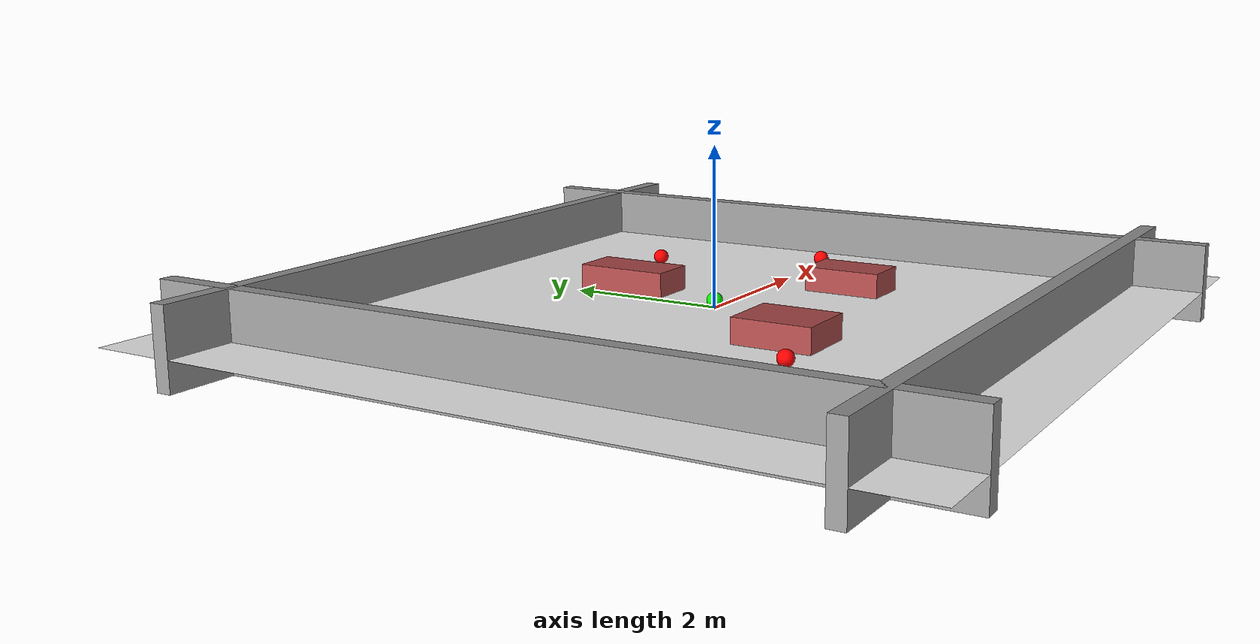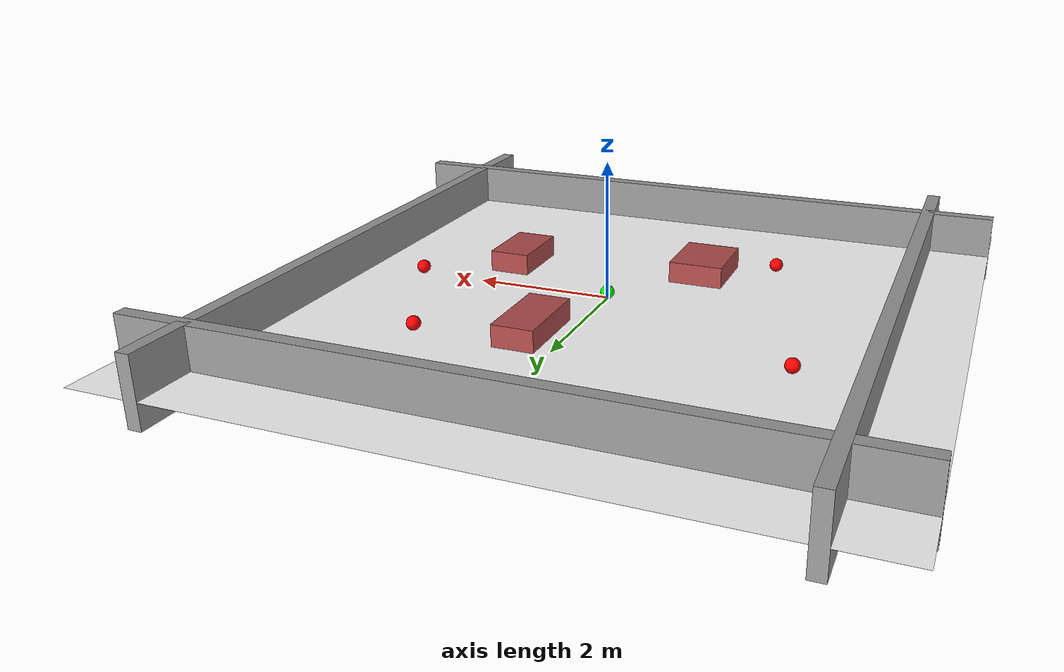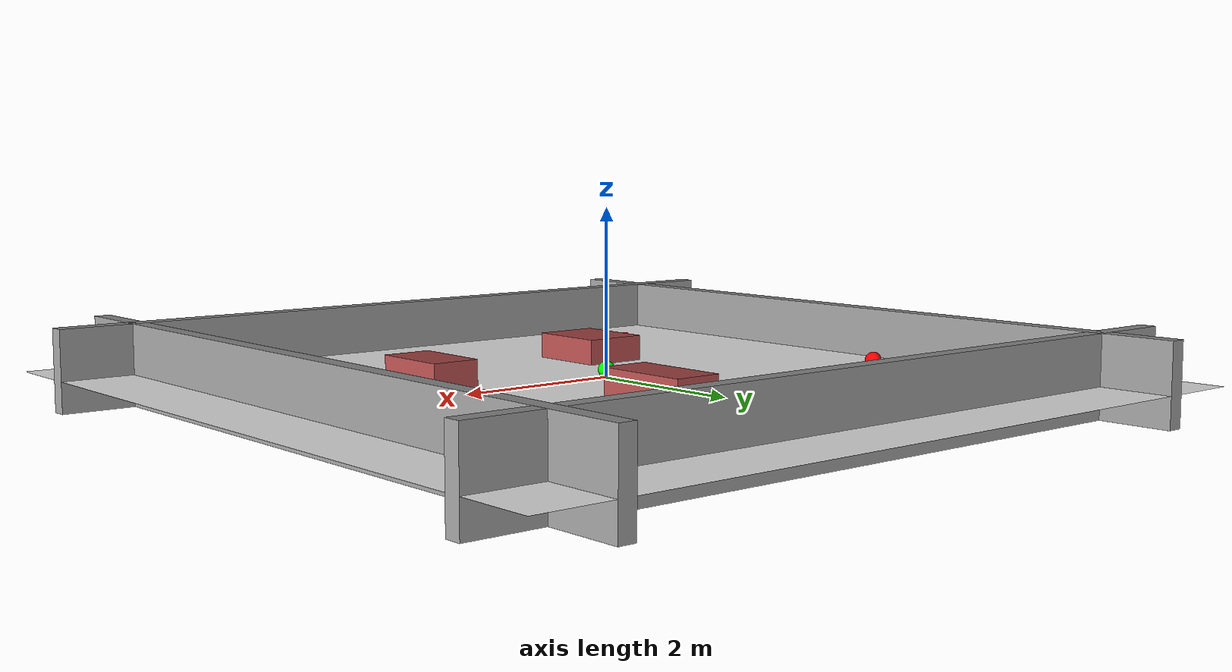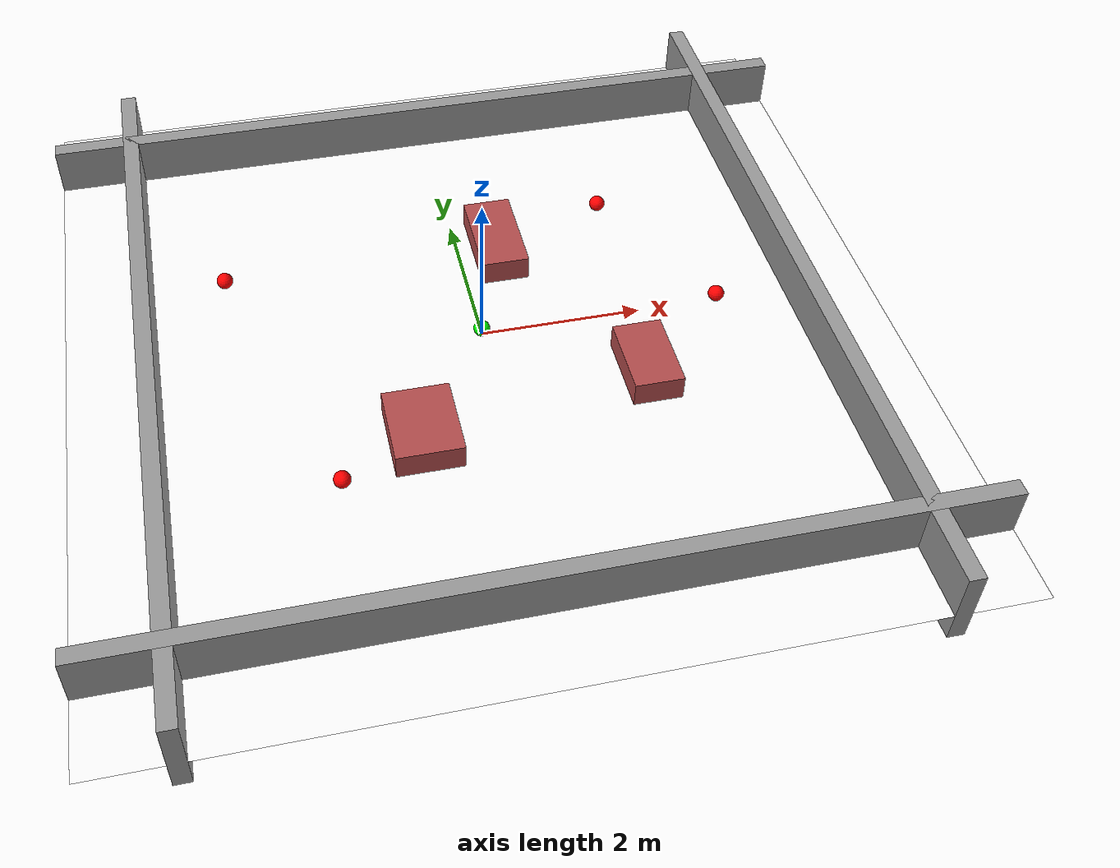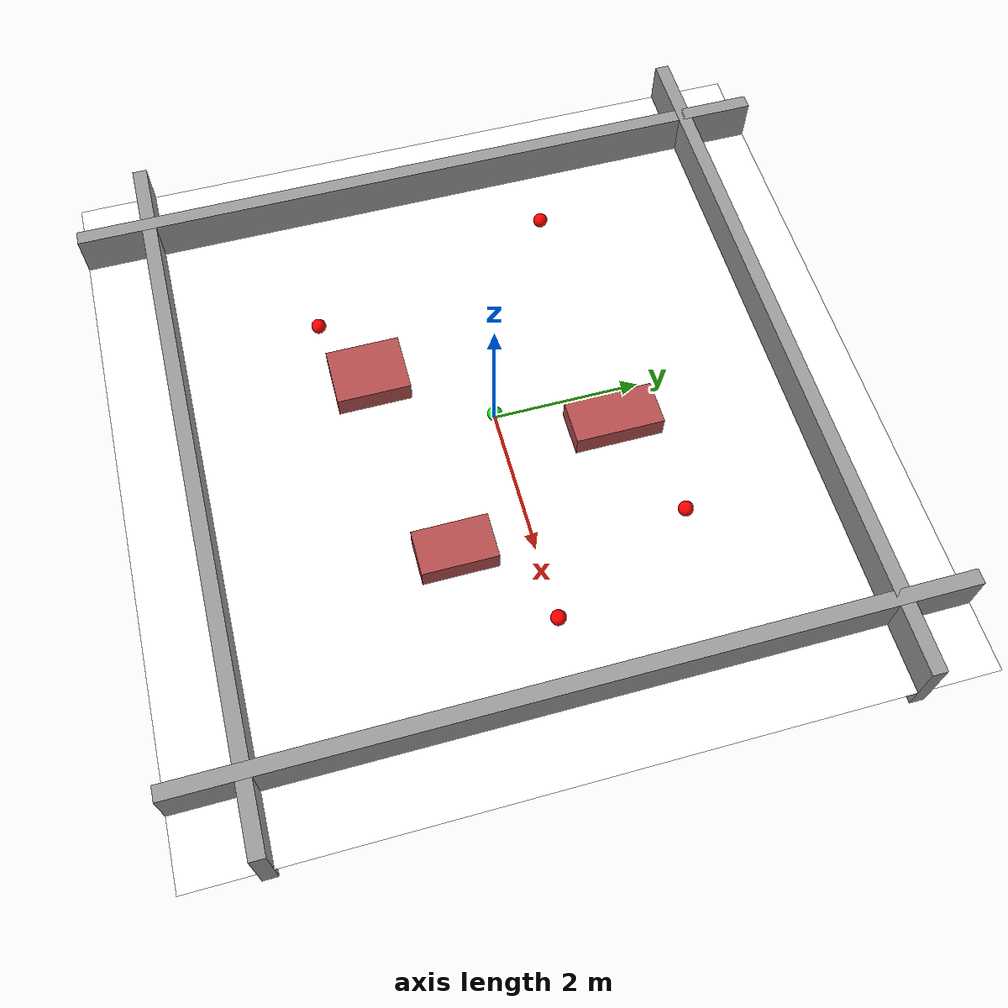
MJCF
<mujoco>
    <option gravity="0 0 -100" integrator="RK4" timestep="0.01"/>
    <visual><map znear="0.01"/></visual>
    <asset>
        <texture name="grid" type="2d" builtin="checker" width="512" height="512" rgb1="0.8 0.8 0.8" rgb2="1 1 1"/>
        <material name="grid_mat" texture="grid" texrepeat="10 10" reflectance="0.2"/>
    </asset>

    <worldbody>
        <camera name="top" pos="0 0 10" xyaxes="1 0 0 0 1 0"/>
        <geom name="floor" type="plane" size="5 5 0.1" material="grid_mat" rgba="1 1 1 1"/>
        <!-- wall -->
        <geom name="wall_left"  type="box" pos="-4 0 0.1" size="0.1 5 0.5" rgba="0.6 0.6 0.6 1"/>
        <geom name="wall_right" type="box" pos="4 0 0.1"  size="0.1 5 0.5" rgba="0.6 0.6 0.6 1"/>
        <geom name="wall_top"   type="box" pos="0 4 0.1"  size="5 0.1 0.5" rgba="0.6 0.6 0.6 1"/>
        <geom name="wall_bot"   type="box" pos="0 -4 0.1" size="5 0.1 0.5" rgba="0.6 0.6 0.6 1"/>

        <!-- obstacles -->
        <geom name="obstacle1" type="box" pos="0.5 1.5 0.1" size="0.3 0.6 0.2" rgba="0.7 0.3 0.3 1"/>
        <geom name="obstacle2" type="box" pos="-1.0 -1.5 0.1" size="0.4 0.5 0.2" rgba="0.7 0.3 0.3 1"/>
        <geom name="obstacle3" type="box" pos="1.8 -1.0 0.1" size="0.3 0.5 0.2" rgba="0.7 0.3 0.3 1"/>

        <body name="robot" pos="0 0 0.1"><freejoint/><geom type="sphere" size="0.1" rgba="0 1 0 1"/></body>
        <body name="cat1" pos="2 2 0.1"><freejoint/><geom type="sphere" size="0.1" rgba="1 0 0 1"/></body>
        <body name="cat2" pos="-2 -2 0.1"><freejoint/><geom type="sphere" size="0.1" rgba="1 0 0 1"/></body>
        <body name="cat3" pos="3 0 0.1"><freejoint/><geom type="sphere" size="0.1" rgba="1 0 0 1"/></body>
        <body name="cat4" pos="-3 1.5 0.1"><freejoint/><geom type="sphere" size="0.1" rgba="1 0 0 1"/></body>
    </worldbody>
</mujoco>
